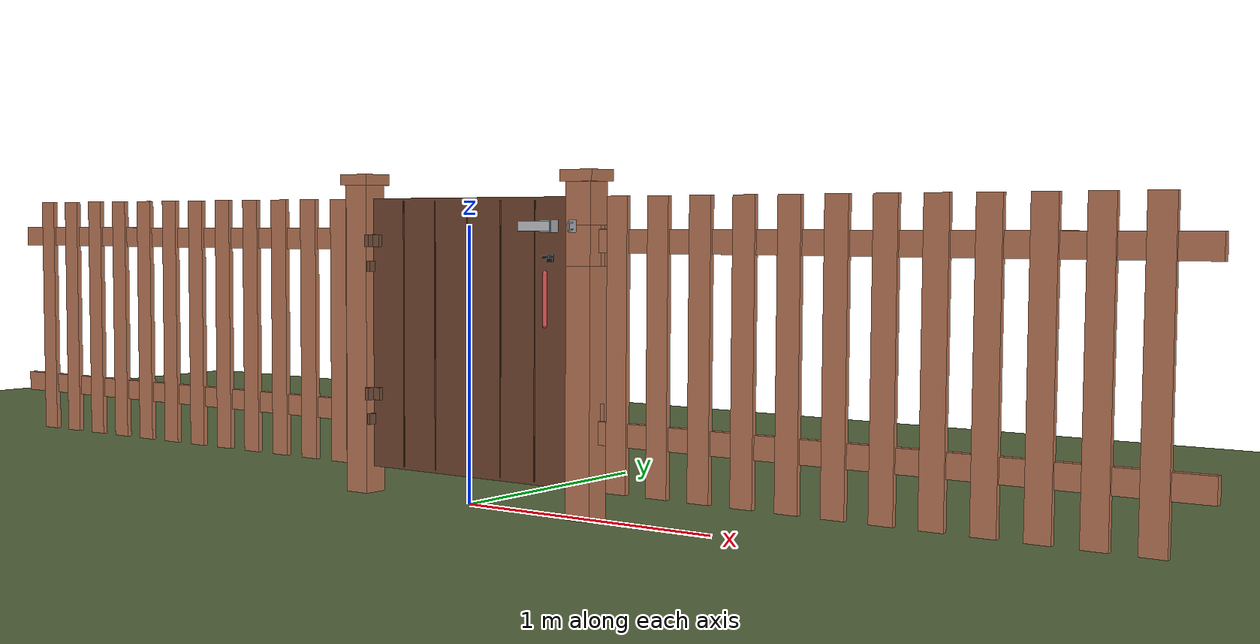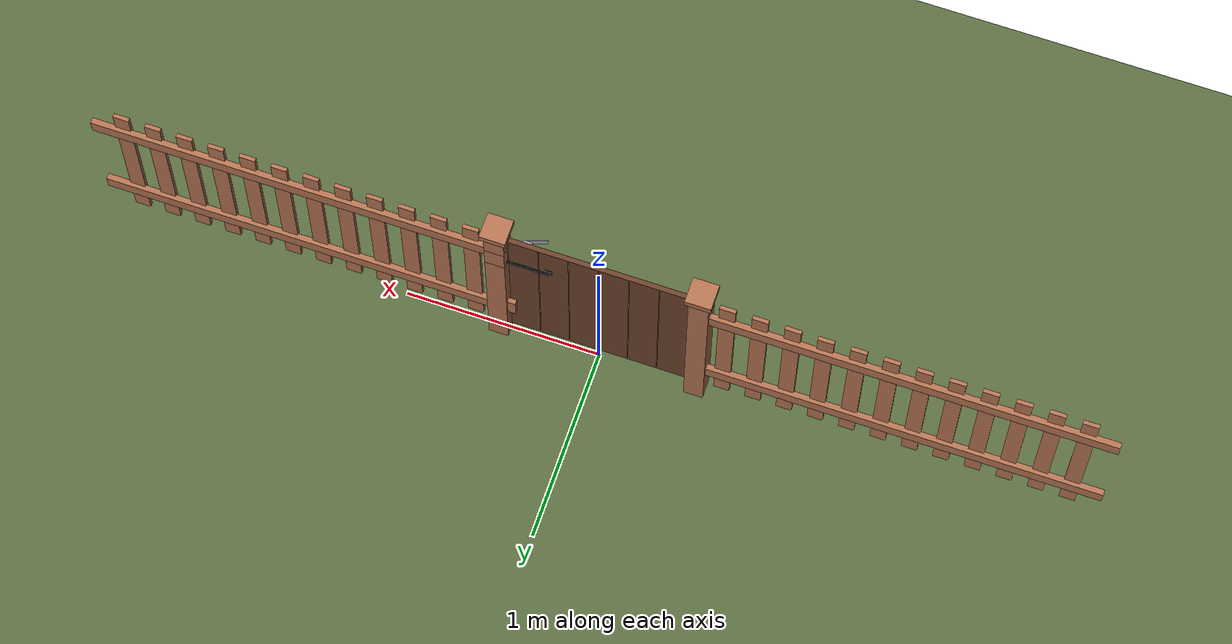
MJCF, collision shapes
<?xml version="1.0" ?>
<mujoco model="db0851_gate_swing_full">
  <compiler angle="radian" meshdir="../../hardware" texturedir="../../textures" autolimits="true" inertiafromgeom="false"/>
  <option timestep="0.002" integrator="implicitfast" cone="elliptic" impratio="10" noslip_iterations="3">
    <flag multiccd="enable"/>
  </option>
  <size memory="16M"/>
  <default>
    <geom condim="4" solref="0.005 1" solimp="0.95 0.99 0.001"/>
    <joint solreflimit="0.005 1" solimplimit="0.95 0.99 0.001"/>
    <tendon solreflimit="0.005 1"/>
    <equality solref="0.002 1"/>
  </default>
  <visual>
    <headlight ambient="0.4 0.4 0.4" diffuse="0.7 0.7 0.7" specular="0.2 0.2 0.2"/>
    <quality shadowsize="4096"/>
    <map znear="0.01" zfar="60"/>
  </visual>
  <asset>
    <mesh name="hinge_b433cbce2b" file="hinge_b433cbce2b.obj"/>
    <mesh name="hinge_jamb_c00731b0bd" file="hinge_jamb_c00731b0bd.obj"/>
    <mesh name="thumb_latch_0073ea78ed" file="thumb_latch_0073ea78ed.obj"/>
    <material name="mat_floor" rgba="0.35 0.42 0.25 1" specular="0.2" shininess="0.15" reflectance="0"/>
    <material name="mat_wall" rgba="0.78 0.76 0.7 1" specular="0.2" shininess="0.1" reflectance="0"/>
    <material name="mat_leaf" rgba="0.423 0.258 0.174 1" specular="0.2" shininess="0.4" reflectance="0"/>
    <material name="mat_leaf_brace" rgba="0.38 0.232 0.156 1" specular="0.2" shininess="0.2" reflectance="0"/>
    <material name="mat_hinge" rgba="0.45 0.3 0.22 1" specular="0.5" shininess="0.1" reflectance="0.2"/>
    <material name="mat_op_wrought_iron" rgba="0.08 0.08 0.09 1" specular="0.56" shininess="0.25" reflectance="0.24"/>
    <material name="mat_op_steel_galvanized" rgba="0.65 0.66 0.68 1" specular="0.74" shininess="0.5" reflectance="0.36"/>
    <material name="mat_padlock" rgba="0.85 0.66 0.3 1" specular="0.8" shininess="0.75" reflectance="0.4"/>
    <material name="mat_frame" rgba="0.7 0.45 0.32 1" specular="0.2" shininess="0.4" reflectance="0"/>
    <material name="mat_fence" rgba="0.7 0.45 0.32 1" specular="0.2" shininess="0.4" reflectance="0"/>
    <texture name="skybox" type="skybox" builtin="gradient" rgb1="0.6 0.7 0.85" rgb2="0.9 0.92 0.95" width="256" height="256"/>
  </asset>
  <worldbody>
    <light name="sun" pos="1.5 -2.5 4" dir="-0.3 0.5 -0.8" directional="true" diffuse="0.8 0.8 0.8" specular="0.3 0.3 0.3" castshadow="true"/>
    <light name="fill" pos="-1.5 2.5 3" dir="0.3 -0.5 -0.7" directional="true" diffuse="0.35 0.35 0.4" castshadow="false"/>
    <camera name="robot_view" pos="0 -1.875 1.035" xyaxes="1 0 0 0 0.26963 0.962964" fovy="52"/>
    <camera name="far_view" pos="0 1.875 1.035" xyaxes="-1 0 0 0 -0.26963 0.962964" fovy="52"/>
    <camera name="iso" pos="1.425 -1.575 1.335" xyaxes="0.741536 0.670913 0 -0.242917 0.268487 0.932151" fovy="46"/>
    <camera name="detail_handle" pos="0.547 -0.8475 1.03" xyaxes="0.97561 0.219512 0 -0.070934 0.315262 0.94635" fovy="38"/>
    <geom name="floor" type="box" size="6 6 0.05" pos="0 0 -0.05" material="mat_floor" group="0" contype="1" conaffinity="1" friction="0.8 0.005 0.0001" density="2400"/>
    <geom name="hinge_0_jamb" type="mesh" mesh="hinge_jamb_c00731b0bd" pos="-0.453 -0.05 0.35" material="mat_hinge" group="1" contype="0" conaffinity="0" density="7850"/>
    <geom name="hinge_0_jamb_lug" type="box" size="0.01 0.01575 0.02" pos="-0.453 -0.03025 0.27956" material="mat_hinge" group="1" contype="0" conaffinity="0" density="7850"/>
    <geom name="hinge_1_jamb" type="mesh" mesh="hinge_jamb_c00731b0bd" pos="-0.453 -0.05 0.92" material="mat_hinge" group="1" contype="0" conaffinity="0" density="7850"/>
    <geom name="hinge_1_jamb_lug" type="box" size="0.01 0.01575 0.02" pos="-0.453 -0.03025 0.84956" material="mat_hinge" group="1" contype="0" conaffinity="0" density="7850"/>
    <geom name="leaf_latch_bar_keeper_b" type="box" size="0.015 0.0025 0.0005" pos="0.4555 0.0245 0.8625" quat="-0.5 -0.5 0.5 0.5" material="mat_op_wrought_iron" group="1" contype="0" conaffinity="0" density="7800"/>
    <geom name="leaf_latch_bar_keeper_l" type="box" size="0.0025 0.07 0.0005" pos="0.4555 0.037 0.935" quat="-0.5 -0.5 0.5 0.5" material="mat_op_wrought_iron" group="1" contype="0" conaffinity="0" density="7800"/>
    <geom name="leaf_latch_bar_keeper_t" type="box" size="0.015 0.0025 0.0005" pos="0.4555 0.0245 1.0075" quat="-0.5 -0.5 0.5 0.5" material="mat_op_wrought_iron" group="1" contype="0" conaffinity="0" density="7800"/>
    <geom name="leaf_latch_bar_keeper_r" type="box" size="0.0025 0.07 0.0005" pos="0.4555 0.012 0.935" quat="-0.5 -0.5 0.5 0.5" material="mat_op_wrought_iron" group="1" contype="0" conaffinity="0" density="7800"/>
    <geom name="leaf_staple_leg_n" type="box" size="0.003 0.0025 0.013" pos="0.484 -0.063 0.9875" quat="0.707107 0.707107 0 0" material="mat_op_steel_galvanized" group="0" contype="1" conaffinity="1" friction="0.6 0.005 0.0001" density="7800"/>
    <geom name="leaf_staple_leg_p" type="box" size="0.003 0.0025 0.013" pos="0.484 -0.063 1.0125" quat="0.707107 0.707107 0 0" material="mat_op_steel_galvanized" group="0" contype="1" conaffinity="1" friction="0.6 0.005 0.0001" density="7800"/>
    <geom name="leaf_staple_bridge" type="box" size="0.003 0.015 0.0025" pos="0.484 -0.0735 1" quat="0.707107 0.707107 0 0" material="mat_op_steel_galvanized" group="0" contype="1" conaffinity="1" friction="0.6 0.005 0.0001" density="7800"/>
    <geom name="leaf_staple_base" type="box" size="0.016 0.021 0.001" pos="0.484 -0.051 1" quat="0.707107 0.707107 0 0" material="mat_op_steel_galvanized" group="1" contype="0" conaffinity="0" density="7800"/>
    <geom name="post_hinge" type="box" size="0.05 0.05 0.575" pos="-0.506 0 0.575" material="mat_frame" group="0" contype="1" conaffinity="1" friction="0.6 0.005 0.0001" density="350"/>
    <geom name="post_hinge_cap" type="box" size="0.065 0.065 0.02" pos="-0.506 0 1.17" material="mat_frame" group="1" contype="0" conaffinity="0" density="350"/>
    <geom name="post_935_wall_n" type="box" size="0.05 0.00775 0.07" pos="0.506 0.04225 0.935" material="mat_frame" group="0" contype="1" conaffinity="1" friction="0.6 0.005 0.0001" density="350"/>
    <geom name="post_935_wall_p" type="box" size="0.05 0.03225 0.07" pos="0.506 -0.01775 0.935" material="mat_frame" group="0" contype="1" conaffinity="1" friction="0.6 0.005 0.0001" density="350"/>
    <geom name="post_935_back" type="box" size="0.04 0.01 0.07" pos="0.516 0.0245 0.935" material="mat_frame" group="0" contype="1" conaffinity="1" friction="0.6 0.005 0.0001" density="350"/>
    <geom name="post_latch_0" type="box" size="0.05 0.05 0.4325" pos="0.506 0 0.4325" material="mat_frame" group="0" contype="1" conaffinity="1" friction="0.6 0.005 0.0001" density="350"/>
    <geom name="post_latch_1" type="box" size="0.05 0.05 0.0725" pos="0.506 0 1.0775" material="mat_frame" group="0" contype="1" conaffinity="1" friction="0.6 0.005 0.0001" density="350"/>
    <geom name="post_latch_cap" type="box" size="0.065 0.065 0.02" pos="0.506 0 1.17" material="mat_frame" group="1" contype="0" conaffinity="0" density="350"/>
    <geom name="gate_stop" type="box" size="0.02 0.012 0.06" pos="0.436 0.0245 0.35" material="mat_frame" group="0" contype="1" conaffinity="1" friction="0.6 0.005 0.0001" density="350"/>
    <geom name="fence_picket_l_0" type="box" size="0.04 0.01 0.5" pos="-0.636 0 0.6" material="mat_fence" group="0" contype="1" conaffinity="1" friction="0.6 0.005 0.0001" density="400"/>
    <geom name="fence_picket_l_1" type="box" size="0.04 0.01 0.5" pos="-0.796 0 0.6" material="mat_fence" group="0" contype="1" conaffinity="1" friction="0.6 0.005 0.0001" density="400"/>
    <geom name="fence_picket_l_2" type="box" size="0.04 0.01 0.5" pos="-0.956 0 0.6" material="mat_fence" group="0" contype="1" conaffinity="1" friction="0.6 0.005 0.0001" density="400"/>
    <geom name="fence_picket_l_3" type="box" size="0.04 0.01 0.5" pos="-1.116 0 0.6" material="mat_fence" group="0" contype="1" conaffinity="1" friction="0.6 0.005 0.0001" density="400"/>
    <geom name="fence_picket_l_4" type="box" size="0.04 0.01 0.5" pos="-1.276 0 0.6" material="mat_fence" group="0" contype="1" conaffinity="1" friction="0.6 0.005 0.0001" density="400"/>
    <geom name="fence_picket_l_5" type="box" size="0.04 0.01 0.5" pos="-1.436 0 0.6" material="mat_fence" group="0" contype="1" conaffinity="1" friction="0.6 0.005 0.0001" density="400"/>
    <geom name="fence_picket_l_6" type="box" size="0.04 0.01 0.5" pos="-1.596 0 0.6" material="mat_fence" group="0" contype="1" conaffinity="1" friction="0.6 0.005 0.0001" density="400"/>
    <geom name="fence_picket_l_7" type="box" size="0.04 0.01 0.5" pos="-1.756 0 0.6" material="mat_fence" group="0" contype="1" conaffinity="1" friction="0.6 0.005 0.0001" density="400"/>
    <geom name="fence_picket_l_8" type="box" size="0.04 0.01 0.5" pos="-1.916 0 0.6" material="mat_fence" group="0" contype="1" conaffinity="1" friction="0.6 0.005 0.0001" density="400"/>
    <geom name="fence_picket_l_9" type="box" size="0.04 0.01 0.5" pos="-2.076 0 0.6" material="mat_fence" group="0" contype="1" conaffinity="1" friction="0.6 0.005 0.0001" density="400"/>
    <geom name="fence_picket_l_10" type="box" size="0.04 0.01 0.5" pos="-2.236 0 0.6" material="mat_fence" group="0" contype="1" conaffinity="1" friction="0.6 0.005 0.0001" density="400"/>
    <geom name="fence_picket_l_11" type="box" size="0.04 0.01 0.5" pos="-2.396 0 0.6" material="mat_fence" group="0" contype="1" conaffinity="1" friction="0.6 0.005 0.0001" density="400"/>
    <geom name="fence_rail_l" type="box" size="1 0.015 0.04" pos="-1.556 0.015 0.95" material="mat_fence" group="0" contype="1" conaffinity="1" friction="0.6 0.005 0.0001" density="400"/>
    <geom name="fence_rail_b_l" type="box" size="1 0.015 0.04" pos="-1.556 0.015 0.3" material="mat_fence" group="0" contype="1" conaffinity="1" friction="0.6 0.005 0.0001" density="400"/>
    <geom name="fence_picket_r_0" type="box" size="0.04 0.01 0.5" pos="0.636 0 0.6" material="mat_fence" group="0" contype="1" conaffinity="1" friction="0.6 0.005 0.0001" density="400"/>
    <geom name="fence_picket_r_1" type="box" size="0.04 0.01 0.5" pos="0.796 0 0.6" material="mat_fence" group="0" contype="1" conaffinity="1" friction="0.6 0.005 0.0001" density="400"/>
    <geom name="fence_picket_r_2" type="box" size="0.04 0.01 0.5" pos="0.956 0 0.6" material="mat_fence" group="0" contype="1" conaffinity="1" friction="0.6 0.005 0.0001" density="400"/>
    <geom name="fence_picket_r_3" type="box" size="0.04 0.01 0.5" pos="1.116 0 0.6" material="mat_fence" group="0" contype="1" conaffinity="1" friction="0.6 0.005 0.0001" density="400"/>
    <geom name="fence_picket_r_4" type="box" size="0.04 0.01 0.5" pos="1.276 0 0.6" material="mat_fence" group="0" contype="1" conaffinity="1" friction="0.6 0.005 0.0001" density="400"/>
    <geom name="fence_picket_r_5" type="box" size="0.04 0.01 0.5" pos="1.436 0 0.6" material="mat_fence" group="0" contype="1" conaffinity="1" friction="0.6 0.005 0.0001" density="400"/>
    <geom name="fence_picket_r_6" type="box" size="0.04 0.01 0.5" pos="1.596 0 0.6" material="mat_fence" group="0" contype="1" conaffinity="1" friction="0.6 0.005 0.0001" density="400"/>
    <geom name="fence_picket_r_7" type="box" size="0.04 0.01 0.5" pos="1.756 0 0.6" material="mat_fence" group="0" contype="1" conaffinity="1" friction="0.6 0.005 0.0001" density="400"/>
    <geom name="fence_picket_r_8" type="box" size="0.04 0.01 0.5" pos="1.916 0 0.6" material="mat_fence" group="0" contype="1" conaffinity="1" friction="0.6 0.005 0.0001" density="400"/>
    <geom name="fence_picket_r_9" type="box" size="0.04 0.01 0.5" pos="2.076 0 0.6" material="mat_fence" group="0" contype="1" conaffinity="1" friction="0.6 0.005 0.0001" density="400"/>
    <geom name="fence_picket_r_10" type="box" size="0.04 0.01 0.5" pos="2.236 0 0.6" material="mat_fence" group="0" contype="1" conaffinity="1" friction="0.6 0.005 0.0001" density="400"/>
    <geom name="fence_picket_r_11" type="box" size="0.04 0.01 0.5" pos="2.396 0 0.6" material="mat_fence" group="0" contype="1" conaffinity="1" friction="0.6 0.005 0.0001" density="400"/>
    <geom name="fence_rail_r" type="box" size="1 0.015 0.04" pos="1.556 0.015 0.95" material="mat_fence" group="0" contype="1" conaffinity="1" friction="0.6 0.005 0.0001" density="400"/>
    <geom name="fence_rail_b_r" type="box" size="1 0.015 0.04" pos="1.556 0.015 0.3" material="mat_fence" group="0" contype="1" conaffinity="1" friction="0.6 0.005 0.0001" density="400"/>
    <geom name="gate_stop_strap_0" type="box" size="0.0505 0.0096 0.048" pos="0.506 0.0245 0.35" material="mat_frame" group="1" contype="0" conaffinity="0" density="7850"/>
    <site name="approach_point" pos="0 -1.5 0" quat="1 0 0 0" size="0.05" rgba="0.2 0.9 0.2 0.5" group="4"/>
    <site name="goal_point" pos="0 1.5 0" quat="1 0 0 0" size="0.05" rgba="0.2 0.9 0.2 0.5" group="4"/>
    <site name="door_plane_center" pos="0 0 0.51" quat="1 0 0 0" size="0.02" rgba="0.2 0.9 0.2 0.5" group="4"/>
    <body name="leaf" pos="-0.456 0 0">
      <inertial pos="0.455163 -0.008445 0.643755" mass="9.310208" quat="0.6728 0.682011 -0.203052 0.202411" diaginertia="0.699069292 0.927088078 1.620753653"/>
      <joint name="leaf_hinge" type="hinge" axis="0 0 -1" pos="0.003 -0.05 0" limited="true" range="0 1.919862" damping="1.118492" frictionloss="1.872388" stiffness="5" springref="-0.8" armature="0.02"/>
      <geom name="leaf_slab" type="box" size="0.45 0.0125 0.5" pos="0.453 0 0.6" material="mat_leaf" group="0" contype="1" conaffinity="1" friction="0.35 0.005 0.0001" density="1"/>
      <geom name="leaf_plank_gap_1" type="box" size="0.002 0.0135 0.49" pos="0.153 0 0.6" material="mat_leaf_brace" group="1" contype="0" conaffinity="0" density="1"/>
      <geom name="leaf_plank_gap_2" type="box" size="0.002 0.0135 0.49" pos="0.303 0 0.6" material="mat_leaf_brace" group="1" contype="0" conaffinity="0" density="1"/>
      <geom name="leaf_plank_gap_3" type="box" size="0.002 0.0135 0.49" pos="0.453 0 0.6" material="mat_leaf_brace" group="1" contype="0" conaffinity="0" density="1"/>
      <geom name="leaf_plank_gap_4" type="box" size="0.002 0.0135 0.49" pos="0.603 0 0.6" material="mat_leaf_brace" group="1" contype="0" conaffinity="0" density="1"/>
      <geom name="leaf_plank_gap_5" type="box" size="0.002 0.0135 0.49" pos="0.753 0 0.6" material="mat_leaf_brace" group="1" contype="0" conaffinity="0" density="1"/>
      <geom name="hinge_0" type="mesh" mesh="hinge_b433cbce2b" pos="0.003 -0.05 0.35" material="mat_hinge" group="1" contype="0" conaffinity="0" density="7850"/>
      <geom name="hinge_0_lug_foot" type="box" size="0.02 0.007563 0.0228" pos="0.025 -0.020063 0.37508" material="mat_hinge" group="1" contype="0" conaffinity="0" density="7850"/>
      <geom name="hinge_0_lug" type="box" size="0.009 0.015187 0.0228" pos="0.006 -0.040813 0.37508" material="mat_hinge" group="1" contype="0" conaffinity="0" density="7850"/>
      <geom name="hinge_1" type="mesh" mesh="hinge_b433cbce2b" pos="0.003 -0.05 0.92" material="mat_hinge" group="1" contype="0" conaffinity="0" density="7850"/>
      <geom name="hinge_1_lug_foot" type="box" size="0.02 0.007563 0.0228" pos="0.025 -0.020063 0.94508" material="mat_hinge" group="1" contype="0" conaffinity="0" density="7850"/>
      <geom name="hinge_1_lug" type="box" size="0.009 0.015187 0.0228" pos="0.006 -0.040813 0.94508" material="mat_hinge" group="1" contype="0" conaffinity="0" density="7850"/>
      <geom name="leaf_suffolk_grip" type="mesh" mesh="thumb_latch_0073ea78ed" pos="0.823 -0.0125 0.75" quat="0.707107 0.707107 0 0" material="mat_op_wrought_iron" group="1" contype="0" conaffinity="0" density="7000"/>
      <geom name="leaf_suffolk_grip_col" type="capsule" size="0.008 0.09" pos="0.823 -0.0475 0.75" material="mat_op_wrought_iron" group="3" contype="1" conaffinity="1" rgba="0.8 0.3 0.3 0.25" friction="0.7 0.01 0.0001" density="7000"/>
      <geom name="leaf_latch_bar_pivot" type="box" size="0.018 0.002 0.018" pos="0.703 0.0145 0.89" material="mat_op_wrought_iron" group="1" contype="0" conaffinity="0" density="7000"/>
      <geom name="leaf_latch_bar_pin" type="cylinder" size="0.005 0.01" pos="0.703 0.0225 0.89" quat="0.707107 -0.707107 0 0" material="mat_op_wrought_iron" group="1" contype="0" conaffinity="0" density="7000"/>
      <geom name="leaf_hasp_plate" type="box" size="0.024 0.0215 0.02075" pos="0.828 -0.03325 1" quat="0.707107 0.707107 0 0" material="mat_op_steel_galvanized" group="1" contype="0" conaffinity="0" density="7800"/>
      <site name="leaf_grip_n" pos="0.823 -0.0475 0.75" quat="1 0 0 0" size="0.012" rgba="0.2 0.9 0.2 0.5" group="4"/>
      <site name="leaf_edge_mid" pos="0.903 0 0.5" quat="1 0 0 0" size="0.02" rgba="0.2 0.9 0.2 0.5" group="4"/>
      <body name="leaf_thumb" pos="0.823 -0.0125 0.895">
        <inertial pos="0 -0.005933 -0.005008" mass="0.119952" quat="0.694063 -0.13519 -0.13519 -0.694063" diaginertia="0.000010452 0.000028338 0.000030045"/>
        <joint name="leaf_thumb_hinge" type="hinge" axis="1 0 0" limited="true" range="0 0.3" damping="0.155195" frictionloss="0.032" stiffness="0.6" springref="-0.5" armature="0.01"/>
        <geom name="leaf_thumb_geom" type="box" size="0.015 0.014 0.003" pos="0 -0.02 0" material="mat_op_wrought_iron" group="0" contype="1" conaffinity="1" friction="0.6 0.005 0.0001" density="7000"/>
        <geom name="leaf_thumb_boss" type="box" size="0.012 0.008 0.013" pos="0 -0.004 -0.005" material="mat_op_wrought_iron" group="1" contype="0" conaffinity="0" density="7000"/>
        <geom name="leaf_thumb_lifter" type="box" size="0.004 0.0165 0.004" pos="0 0.0185 -0.017" material="mat_op_wrought_iron" group="1" contype="0" conaffinity="0" density="7000"/>
        <site name="leaf_thumb_push" pos="0 -0.024 0.005" quat="1 0 0 0" size="0.01" rgba="0.2 0.9 0.2 0.5" group="4"/>
      </body>
      <body name="leaf_latch_bar" pos="0.703 0.0245 0.89">
        <inertial pos="0.106 0 0" mass="0.25" quat="0 0 0.707107 0.707107" diaginertia="0.000004465 0.000904065 0.000904065"/>
        <joint name="leaf_latch_bar_hinge" type="hinge" axis="0 -1 0" limited="true" range="0 0.6" damping="0.01" frictionloss="0.01" armature="0.005"/>
        <geom name="leaf_latch_bar_geom" type="capsule" size="0.006 0.1" pos="0.106 0 0" quat="0.707107 0 0.707107 0" material="mat_op_wrought_iron" group="0" contype="1" conaffinity="1" friction="0.6 0.005 0.0001" density="7850"/>
      </body>
      <body name="leaf_hasp" pos="0.848 -0.054 1">
        <inertial pos="-0.044323 -0.01367 0" mass="0.11484" quat="0.695849 -0.695849 -0.125677 0.125677" diaginertia="0.000013089 0.000158235 0.000170826"/>
        <joint name="leaf_hasp_hinge" type="hinge" axis="0 0 -1" limited="true" range="0 2.9" damping="0.02" frictionloss="0.05" armature="0.005" ref="2.8"/>
        <geom name="leaf_hasp_strap" type="box" size="0.057 0.0175 0.0015" pos="-0.054209 -0.017681 0" quat="0.120185 0.120185 -0.696818 -0.696818" material="mat_op_steel_galvanized" group="0" contype="1" conaffinity="1" friction="0.6 0.005 0.0001" density="7800"/>
        <geom name="leaf_hasp_knuckle" type="cylinder" size="0.0045 0.0215" pos="-0.00134 0.003769 0" quat="0 0.169967 -0.98545 0" material="mat_op_steel_galvanized" group="1" contype="0" conaffinity="0" density="7850"/>
        <site name="leaf_hasp_grip" pos="-0.091919 -0.022067 0" quat="0.169967 0 0 -0.98545" size="0.01" rgba="0.2 0.9 0.2 0.5" group="4"/>
      </body>
    </body>
  </worldbody>
  <equality>
    <joint name="leaf_thumb_couple" joint1="leaf_latch_bar_hinge" joint2="leaf_thumb_hinge" polycoef="0 2 0 0 0" active="true"/>
  </equality>
  <sensor>
    <jointpos name="leaf_hinge_pos" joint="leaf_hinge"/>
    <jointvel name="leaf_hinge_vel" joint="leaf_hinge"/>
    <jointpos name="leaf_thumb_hinge_pos" joint="leaf_thumb_hinge"/>
    <jointvel name="leaf_thumb_hinge_vel" joint="leaf_thumb_hinge"/>
    <jointpos name="leaf_latch_bar_hinge_pos" joint="leaf_latch_bar_hinge"/>
    <jointvel name="leaf_latch_bar_hinge_vel" joint="leaf_latch_bar_hinge"/>
    <jointpos name="leaf_hasp_hinge_pos" joint="leaf_hasp_hinge"/>
    <jointvel name="leaf_hasp_hinge_vel" joint="leaf_hasp_hinge"/>
  </sensor>
</mujoco>
